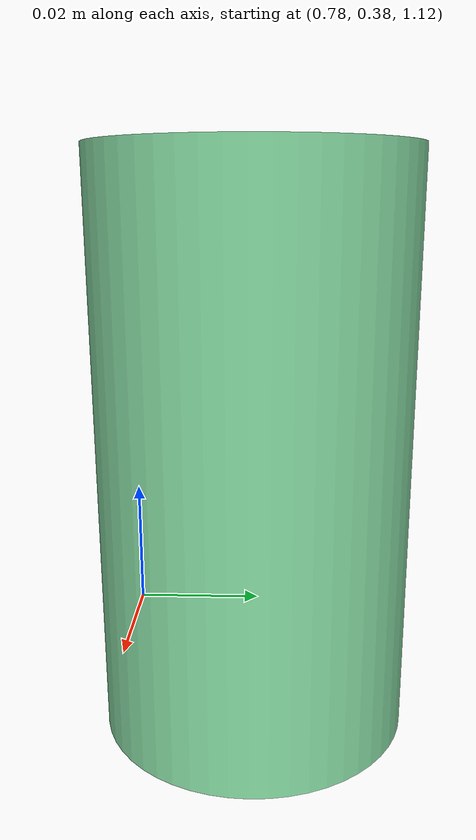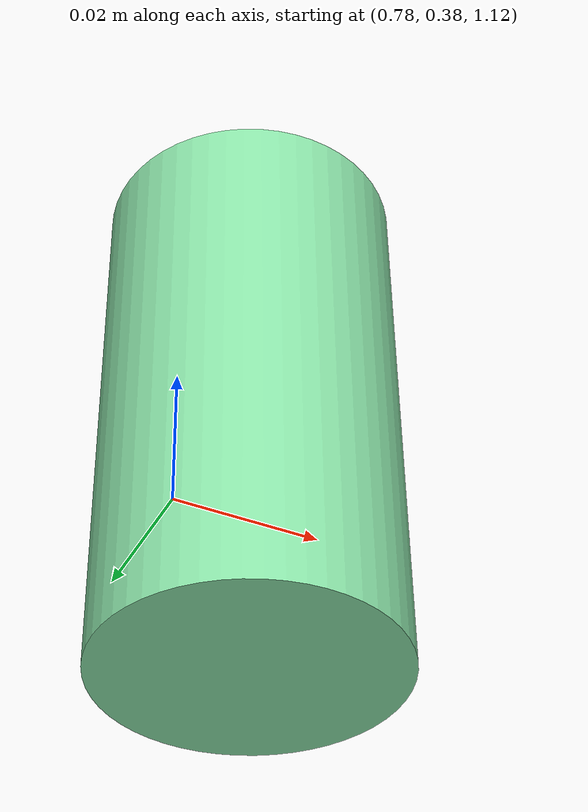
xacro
<?xml version="1.0" ?>
<robot name="GreenCylinder" xmlns:xacro="http://www.ros.org/wiki/xacro">

<xacro:include filename="$(find cv_ur5_project)/urdf/materials.xacro" />
<xacro:property name="body_color" value="0.537 0.878 0.651" />

<link name="base_link">
  <inertial>
    <origin xyz="0.0 0.04127499999999999 0.0" rpy="0 0 0"/>
    <mass value="1.0055881486229423"/>
    <inertia ixx="0.000695" iyy="0.000248" izz="0.000695" ixy="0.0" iyz="0.0" ixz="-0.0"/>
  </inertial>
  <visual>
    <origin xyz="0.8 0.4 1.11125" rpy="1.5708 0 0"/>
    <geometry>
      <mesh filename="package://cv_ur5_project/meshes/cylinder_link.stl" scale="0.001 0.001 0.001"/>
    </geometry>
    <material name="green"/>
  </visual>
  <collision>
    <origin xyz="0.8 0.4 1.11125" rpy="1.5708 0 0"/>
    <geometry>
      <mesh filename="package://cv_ur5_project/meshes/cylinder_link.stl" scale="0.001 0.001 0.001"/>
    </geometry>
  </collision>
</link>

<gazebo reference="base_link">
  <material>${body_color}</material>
</gazebo>

</robot>

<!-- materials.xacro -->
<robot name="Setup" xmlns:xacro="http://www.ros.org/wiki/xacro" >

<material name="gray">
  <color rgba="0.675 0.675 0.675 1.000"/>
</material>

<material name="off_white">
  <color rgba="0.961 0.961 0.953 1.000"/>
</material>

<material name="green">
  <color rgba="0.537 0.878 0.651 1.000"/>
</material>

<material name="blue">
  <color rgba="0.419 0.796 0.898 1.000"/>
</material>

</robot>
